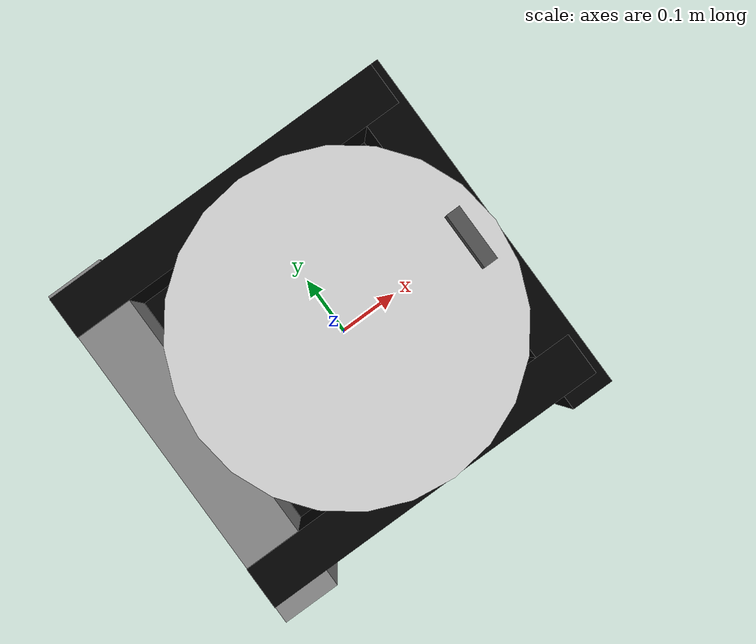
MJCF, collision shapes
<mujoco model="CoaterMSC150T">
  <!-- XML 位于 model/object，需要返回到 assets -->
  <compiler angle="radian" meshdir="../../assets"/>

  <option gravity="0 0 -9.81"/>

  <asset>
    <!-- 主 mesh -->
    <mesh
      name="coater_msc150t_mesh"
      file="CoaterMSC150T/base.obj"
      scale="0.3 0.3 0.3"/>
  </asset>

  <worldbody>
    <body name="coater_msc150t" quat="0.7071 0.7071 0 0">

      <!-- 视觉几何 -->
      <geom
        name="coater_msc150t_visual"
        type="mesh"
        mesh="coater_msc150t_mesh"
        contype="0"
        rgba="0.3 0.3 0.3 1"
        conaffinity="0"/>
      <geom name="rotate_origin"
        type="box"
        size="0.01 0.01 0.01"
        pos="-0.23 0.50 -0.0022"
        density="2500"
        contype="0"
        conaffinity="0"
        rgba="0 0 0 0"/>
      <!--lid-->
      <body name="coater_msc150t_lid" pos="0 0 0" quat="1 0 0 0">
        <joint
          name="coater_msc150t_lid_hinge"
          type="hinge"
          pos="-0.23 0.50 -0.0022"
          axis="0 0 1"
          range="-0 1.5"
          limited="true"
          damping="0.2"/>
        <geom name="handle"
          type="box"
          size="0.01 0.017 0.04"
          pos="0.19 0.51 0"
          density="2500"
          contype="1"
          conaffinity="1"
          rgba="0.3 0.3 0.3 1"/>

        <!-- lid抓取位点 -->
         <site name="lid_handle_grasp_site"
          type="sphere"
          pos="0.19 0.51 0"
          quat="1 0 0 0"
          size="0.015"
          rgba="0 0 0 0"/>

        <geom
          type="cylinder"
          size="0.23 0.004"
          pos="-0 0.497 -0"
          euler="1.5708 0 0"
          contype="1"
          conaffinity="1"
          friction="0.6 0.2 0.001"
          density="2500"
          rgba="0.8 0.8 0.8 0.4"/>
      </body>

      <!-- 碰撞几何 -->
      <geom
        name="coater_msc150t_collision"
        type="mesh"
        mesh="coater_msc150t_mesh"
        rgba="0.5 0.5 0.5 1"
        contype="0"
        conaffinity="0"
        friction="1.0 0.3 0.001"/>
      <geom name="box_1"
        type="box"
        size="0.245 0.175 0.245"
        pos="0 0.175 0"
        density="4500"
        contype="1"
        conaffinity="1"
        rgba="0 0 0 0"/>
      <geom name="box_2"
        type="box"
        size="0.04 0.165 0.254"
        pos="-0.24 0.32 0"
        density="4500"
        contype="1"
        conaffinity="1"
        rgba="0.5 0.5 0.5 1"/>
      <geom name="box_3"
        type="box"
        size="0.25 0.07 0.03"
        pos="-0.03 0.42 0.2"
        density="4500"
        contype="1"
        conaffinity="1"
        rgba="0 0 0 0"/>
      <geom name="box_4"
        type="box"
        size="0.25 0.07 0.03"
        pos="-0.03 0.42 -0.22"
        density="4500"
        contype="1"
        conaffinity="1"
        rgba="0 0 0 0"/>
      <geom name="box_5"
        type="box"
        size="0.03 0.07 0.25"
        pos="0.2 0.42 -0"
        density="4500"
        contype="1"
        conaffinity="1"
        rgba="0 0 0 0"/>
      <geom
        name="table"
        type="cylinder"
        size="0.043 0.03"
        pos="0 0.363 -0.018"
        euler="1.5708 0 0"
        contype="1"
        conaffinity="1"
        friction="0.6 0.2 0.001"
        density="2500"
        rgba="0 0 0 0"/>

    </body>
  </worldbody>
   <actuator>
    <position
      name="coater_msc150t_lid_ctrl"
      joint="coater_msc150t_lid_hinge"
      kp="20"
      ctrlrange="0 1.57"
      ctrllimited="true"/>
  </actuator>
</mujoco>
